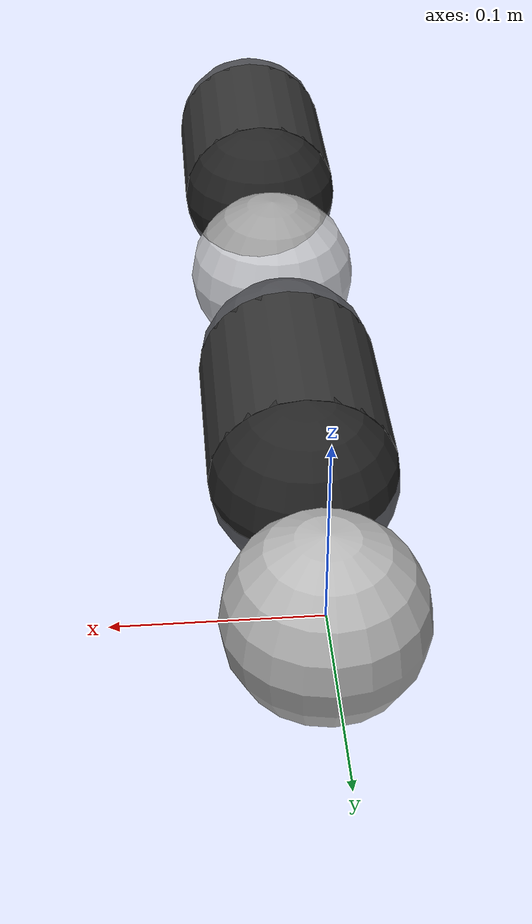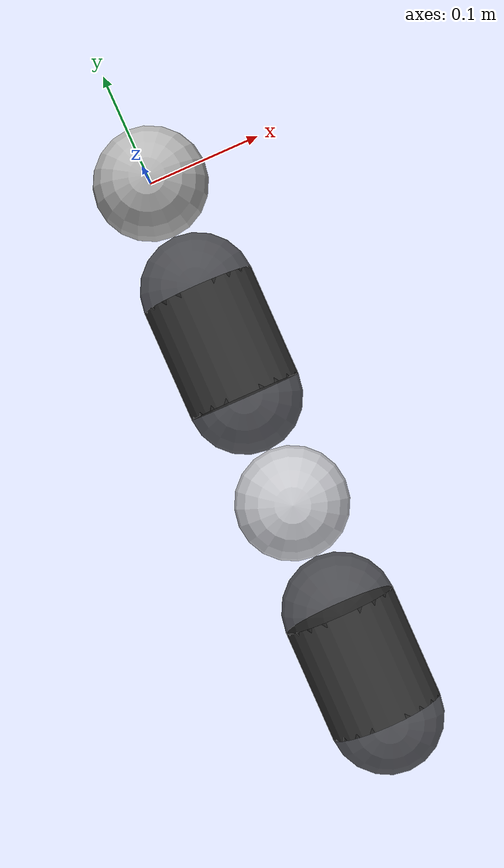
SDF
<sdf version='1.6'>
  <model name='robot_left'>

  <link name="link_0">
  <pose> 0 0 0 0 0 0</pose>
  <inertial>
    <mass>1</mass>
    <inertia>
      <ixx>0.0033</ixx>
      <ixy>0</ixy>
      <ixz>0</ixz>
      <iyy>0.0033</iyy>
      <iyz>0</iyz>
      <izz>0.0033</izz>
    </inertia>
  </inertial>

  <visual name='ball'>
    <pose frame=''> 0 0 0 0 0 0 </pose>
    <geometry>
      <sphere>
       <radius>0.05</radius>
      </sphere>
    </geometry>
  </visual>

  <collision name="collision">
    <pose frame=''> 0 0 0 0 0 0 </pose>
    <geometry>
      <sphere>
        <radius>0.05</radius>
      </sphere>
    </geometry>
    <surface>
      <friction>
        <ode>
          <mu>0.8</mu>
          <mu2>0.8</mu2>
        </ode>
      </friction>
    </surface>
  </collision>
  </link>

  <joint name="joint_1" type="revolute">
    <child>link_1</child>
    <parent>link_0</parent>
    <axis>
      <xyz expressed_in="__model__"> 1 0 0 </xyz>
      <limit>
        <lower>-1.5708</lower>
        <upper>0</upper>
        <effort>300</effort>
      </limit>
    </axis>
  </joint>

  <link name="link_1">
  <pose> 0 0 0 0 0 0</pose>
  <inertial>
      <mass>1</mass>
      <inertia>
        <ixx>0.0033</ixx>
        <ixy>0</ixy>
        <ixz>0</ixz>
        <iyy>0.0033</iyy>
        <iyz>0</iyz>
        <izz>0.0033</izz>
      </inertia>
  </inertial>

  <visual name='ball0'>
    <pose> 0 -0.1 0 0 0 0</pose>
    <geometry>
      <sphere>
        <radius>0.05</radius>
      </sphere>
    </geometry>
    <material>
      <diffuse>0.2 0.2 0.2 0.8</diffuse>
    </material>
  </visual>

  <visual name='ball1'>
    <pose>0 -0.2 0 0 0 0</pose>
    <geometry>
      <sphere>
       <radius>0.05</radius>
      </sphere>
    </geometry>
    <material>
      <diffuse>0.2 0.2 0.2 0.8</diffuse>
    </material>
  </visual>

  <visual name='ball2'>
    <pose>0 -0.3 0 0 0 0</pose>
    <geometry>
      <sphere>
       <radius>0.05</radius>
      </sphere>
    </geometry>
    <material>
      <diffuse>0.8 0.8 0.8 0.8</diffuse>
    </material>
  </visual>

  <visual name='cylinder'>
    <pose>0 -0.15 0 1.57079632 0 0</pose>
    <geometry>
      <cylinder>
       <radius>0.05</radius>
       <length>0.1</length>
      </cylinder>
    </geometry>
    <material>
      <diffuse>0.2 0.2 0.2 1.0</diffuse>
    </material>
  </visual>

  <collision name="collision_0">
    <pose frame=''> 0 -0.1 0 0 0 0 </pose>
    <geometry>
      <sphere>
        <radius>0.05</radius>
      </sphere>
    </geometry>
    <surface>
      <friction>
        <ode>
          <mu>0.8</mu>
          <mu2>0.8</mu2>
        </ode>
      </friction>
    </surface>
  </collision>

  <collision name="collision_1">
    <pose frame=''> 0 -0.2 0 0 0 0 </pose>
    <geometry>
      <sphere>
        <radius>0.05</radius>
      </sphere>
    </geometry>
    <surface>
      <friction>
        <ode>
          <mu>0.8</mu>
          <mu2>0.8</mu2>
        </ode>
      </friction>
    </surface>
  </collision>

  <collision name="collision_2">
    <pose frame=''> 0 -0.3 0 0 0 0 </pose>
    <geometry>
      <sphere>
        <radius>0.05</radius>
      </sphere>
    </geometry>
    <surface>
      <friction>
        <ode>
          <mu>0.8</mu>
          <mu2>0.8</mu2>
        </ode>
      </friction>
    </surface>
  </collision>
  </link>

  <joint name="joint_2" type="revolute">
    <child>link_2</child>
    <parent>link_1</parent>
    <axis>
      <xyz> 1 0 0 </xyz>
      <limit>
        <lower>-2.4</lower>
        <upper>0</upper>
      </limit>
    </axis>
  </joint>

  <link name="link_2">
  <pose> 0 -0.3 0 0 0 0</pose>
  <inertial>
      <mass>1</mass>
      <inertia>
        <ixx>0.0033</ixx>
        <ixy>0</ixy>
        <ixz>0</ixz>
        <iyy>0.0033</iyy>
        <iyz>0</iyz>
        <izz>0.0033</izz>
      </inertia>
  </inertial>

  <visual name='ball0'>
    <pose> 0 -0.1 0 0 0 0</pose>
    <geometry>
      <sphere>
        <radius>0.05</radius>
      </sphere>
    </geometry>
    <material>
      <diffuse>0.2 0.2 0.2 0.8</diffuse>
    </material>
  </visual>

  <visual name='ball1'>
    <pose>0 -0.2 0 0 0 0</pose>
    <geometry>
      <sphere>
       <radius>0.05</radius>
      </sphere>
    </geometry>
    <material>
      <diffuse>0.2 0.2 0.2 0.8</diffuse>
    </material>
  </visual>

  <visual name='cylinder'>
    <pose>0 -0.15 0 1.57079632 0 0</pose>
    <geometry>
      <cylinder>
       <radius>0.05</radius>
       <length>0.1</length>
      </cylinder>
    </geometry>
    <material>
      <diffuse>0.2 0.2 0.2 1.0</diffuse>
    </material>
  </visual>

  <collision name="collision_0">
    <pose frame=''> 0 -0.1 0 0 0 0 </pose>
    <geometry>
      <sphere>
        <radius>0.05</radius>
      </sphere>
    </geometry>
    <surface>
      <friction>
        <ode>
          <mu>0.8</mu>
          <mu2>0.8</mu2>
        </ode>
      </friction>
    </surface>
  </collision>

  <collision name="collision_1">
    <pose frame=''> 0 -0.2 0 0 0 0 </pose>
    <geometry>
      <sphere>
        <radius>0.05</radius>
      </sphere>
    </geometry>
    <surface>
      <friction>
        <ode>
          <mu>0.8</mu>
          <mu2>0.8</mu2>
        </ode>
      </friction>
    </surface>
  </collision>
  </link>
  </model>
</sdf>
